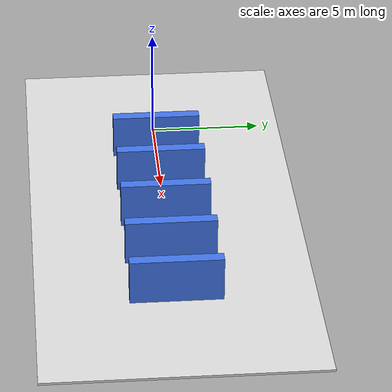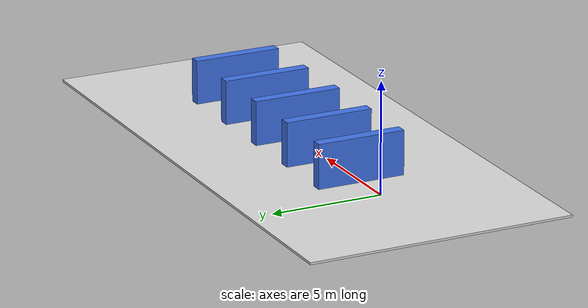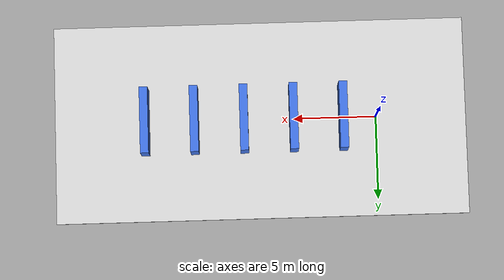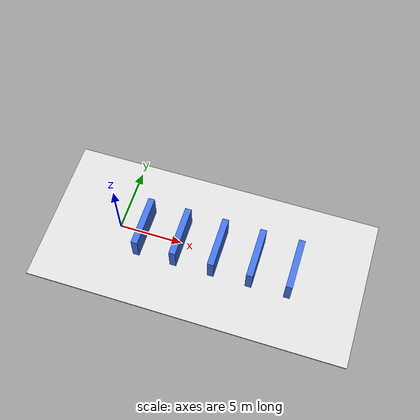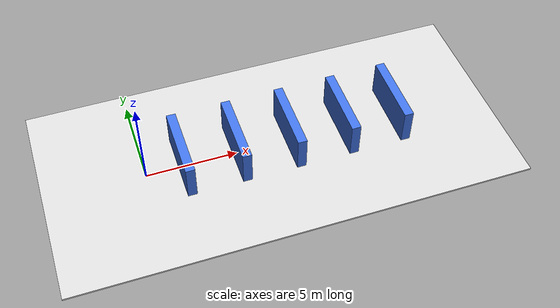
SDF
<?xml version="1.0" ?>
<sdf version="1.7">
  <world name="warehouse_world">

    <light type="directional" name="sun">
      <pose>0 0 10 0 0 0</pose>
      <diffuse>1 1 1 1</diffuse>
      <specular>0.4 0.4 0.4 1</specular>
      <direction>-0.5 0.5 -1</direction>
    </light>

    <model name="ground">
      <static>true</static>
      <link name="link">
        <collision name="collision">
          <geometry>
            <box><size>25 12 0.1</size></box>
          </geometry>
        </collision>
        <visual name="visual">
          <geometry>
            <box><size>25 12 0.1</size></box>
          </geometry>
          <material>
            <ambient>0.85 0.85 0.85 1</ambient>
            <diffuse>0.85 0.85 0.85 1</diffuse>
          </material>
        </visual>
      </link>
      <pose>7 0 -0.05 0 0 0</pose>
    </model>

    <model name="shelf_1">
      <static>true</static>
      <link name="link">
        <collision name="collision">
          <geometry>
            <box><size>0.5 4 2</size></box>
          </geometry>
        </collision>
        <visual name="visual">
          <geometry>
            <box><size>0.5 4 2</size></box>
          </geometry>
          <material>
            <ambient>0.25 0.45 0.9 1</ambient>
            <diffuse>0.25 0.45 0.9 1</diffuse>
          </material>
        </visual>
      </link>
      <pose>2 0 1 0 0 0</pose>
    </model>

    <model name="shelf_2">
      <static>true</static>
      <link name="link">
        <collision name="collision">
          <geometry>
            <box><size>0.5 4 2</size></box>
          </geometry>
        </collision>
        <visual name="visual">
          <geometry>
            <box><size>0.5 4 2</size></box>
          </geometry>
          <material>
            <ambient>0.25 0.45 0.9 1</ambient>
            <diffuse>0.25 0.45 0.9 1</diffuse>
          </material>
        </visual>
      </link>
      <pose>5 0 1 0 0 0</pose>
    </model>

    <model name="shelf_3">
      <static>true</static>
      <link name="link">
        <collision name="collision">
          <geometry>
            <box><size>0.5 4 2</size></box>
          </geometry>
        </collision>
        <visual name="visual">
          <geometry>
            <box><size>0.5 4 2</size></box>
          </geometry>
          <material>
            <ambient>0.25 0.45 0.9 1</ambient>
            <diffuse>0.25 0.45 0.9 1</diffuse>
          </material>
        </visual>
      </link>
      <pose>8 0 1 0 0 0</pose>
    </model>

    <model name="shelf_4">
      <static>true</static>
      <link name="link">
        <collision name="collision">
          <geometry>
            <box><size>0.5 4 2</size></box>
          </geometry>
        </collision>
        <visual name="visual">
          <geometry>
            <box><size>0.5 4 2</size></box>
          </geometry>
          <material>
            <ambient>0.25 0.45 0.9 1</ambient>
            <diffuse>0.25 0.45 0.9 1</diffuse>
          </material>
        </visual>
      </link>
      <pose>11 0 1 0 0 0</pose>
    </model>

    <model name="shelf_5">
      <static>true</static>
      <link name="link">
        <collision name="collision">
          <geometry>
            <box><size>0.5 4 2</size></box>
          </geometry>
        </collision>
        <visual name="visual">
          <geometry>
            <box><size>0.5 4 2</size></box>
          </geometry>
          <material>
            <ambient>0.25 0.45 0.9 1</ambient>
            <diffuse>0.25 0.45 0.9 1</diffuse>
          </material>
        </visual>
      </link>
      <pose>14 0 1 0 0 0</pose>
    </model>

  </world>
</sdf>
